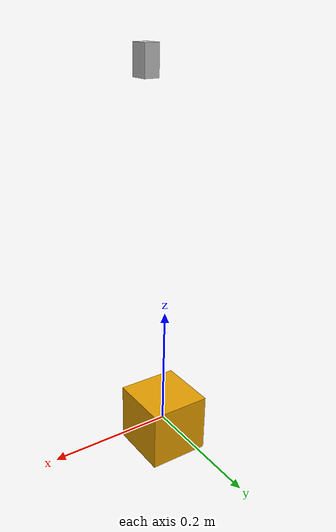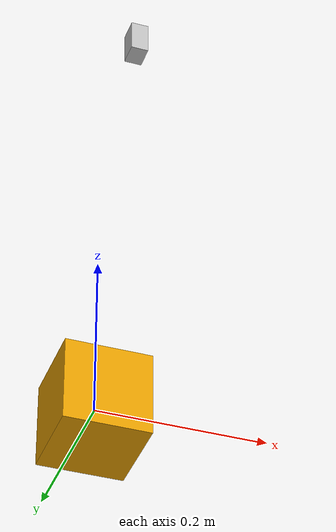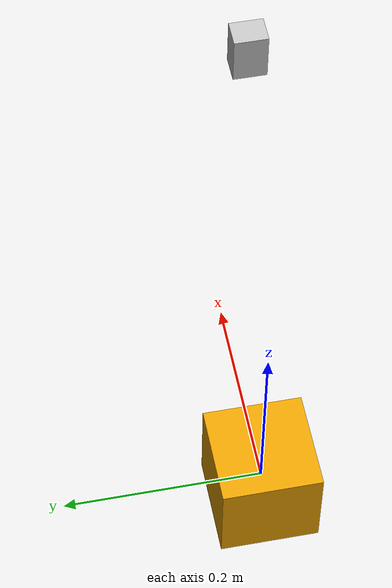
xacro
<?xml version="1.0"?>
<!--
  로봇에 RealSense D405 카메라를 추가하는 예제

  사용 방법:
  1. hand-eye 캘리브레이션 완료
  2. 결과 YAML 파일에서 camera_to_gripper_transform 값 확인
  3. 아래 xyz, rpy 값을 캘리브레이션 결과로 업데이트
-->
<robot xmlns:xacro="http://www.ros.org/wiki/xacro" name="robot_with_camera">

  <!-- RealSense D405 Macro 포함 -->
  <xacro:include filename="$(find realsense_service)/urdf/realsense_d405.xacro"/>

  <!-- 로봇의 기존 URDF (예시) -->
  <!-- 실제 사용 시 로봇의 URDF/XACRO를 include 하세요 -->

  <link name="base_link">
    <visual>
      <geometry>
        <box size="0.1 0.1 0.1"/>
      </geometry>
    </visual>
  </link>

  <link name="tool0"/>
  <joint name="tool_joint" type="fixed">
    <parent link="base_link"/>
    <child link="tool0"/>
    <origin xyz="0 0 0.5" rpy="0 0 0"/>
  </joint>

  <!--
  카메라 추가

  캘리브레이션 결과 예시:
  camera_to_gripper_transform:
    translation:
      x: 0.05
      y: 0.02
      z: 0.08
    rotation_rpy:  # 라디안 단위
      roll: 0.0
      pitch: 1.57
      yaw: 0.0
  -->

  <xacro:realsense_d405 parent="tool0">
    <!--
    캘리브레이션 결과를 여기에 입력하세요!
    xyz: translation 값 (미터)
    rpy: rotation 값 (라디안)
    -->
    <origin xyz="0.05 0.02 0.08" rpy="0.0 1.57 0.0"/>
  </xacro:realsense_d405>

</robot>

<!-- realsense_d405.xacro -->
<!--
  RealSense D405 Camera URDF/XACRO

  Hand-eye 캘리브레이션 결과를 반영한 카메라 모델
  사용법:
    1. 캘리브레이션 완료 후 아래 값들을 업데이트
    2. 로봇의 URDF/XACRO에 이 파일을 include
-->
<robot xmlns:xacro="http://www.ros.org/wiki/xacro">

  <xacro:macro name="realsense_d405" params="parent *origin">

    <!-- Camera Link -->
    <link name="camera_link">
      <visual>
        <origin xyz="0.0 0.0 0.0" rpy="0 0 0"/>
        <geometry>
          <!-- RealSense D405 크기: 42mm x 28mm x 22mm -->
          <box size="0.042 0.028 0.022"/>
        </geometry>
        <material name="camera_silver">
          <color rgba="0.75 0.75 0.75 1.0"/>
        </material>
      </visual>
      <collision>
        <origin xyz="0.0 0.0 0.0" rpy="0 0 0"/>
        <geometry>
          <box size="0.042 0.028 0.022"/>
        </geometry>
      </collision>
      <inertial>
        <mass value="0.032"/>
        <origin xyz="0 0 0" rpy="0 0 0"/>
        <inertia ixx="0.00001" ixy="0.0" ixz="0.0"
                 iyy="0.00001" iyz="0.0"
                 izz="0.00001"/>
      </inertial>
    </link>

    <!-- Joint: parent -> camera_link -->
    <joint name="camera_joint" type="fixed">
      <parent link="${parent}"/>
      <child link="camera_link"/>
      <xacro:insert_block name="origin"/>
    </joint>

    <!-- Camera Color Optical Frame -->
    <link name="camera_color_optical_frame"/>
    <joint name="camera_color_optical_joint" type="fixed">
      <parent link="camera_link"/>
      <child link="camera_color_optical_frame"/>
      <!-- ROS optical frame 관례: Z forward, Y down, X right -->
      <origin xyz="0 0 0" rpy="${-pi/2} 0 ${-pi/2}"/>
    </joint>

    <!-- Camera Depth Optical Frame -->
    <link name="camera_depth_optical_frame"/>
    <joint name="camera_depth_optical_joint" type="fixed">
      <parent link="camera_link"/>
      <child link="camera_depth_optical_frame"/>
      <origin xyz="0 0 0" rpy="${-pi/2} 0 ${-pi/2}"/>
    </joint>

    <!-- Camera RGB Frame (D405는 color와 depth가 거의 동일 위치) -->
    <link name="camera_color_frame"/>
    <joint name="camera_color_joint" type="fixed">
      <parent link="camera_link"/>
      <child link="camera_color_frame"/>
      <origin xyz="0 0 0" rpy="0 0 0"/>
    </joint>

    <!-- Camera Depth Frame -->
    <link name="camera_depth_frame"/>
    <joint name="camera_depth_joint" type="fixed">
      <parent link="camera_link"/>
      <child link="camera_depth_frame"/>
      <origin xyz="0 0 0" rpy="0 0 0"/>
    </joint>

  </xacro:macro>

</robot>
